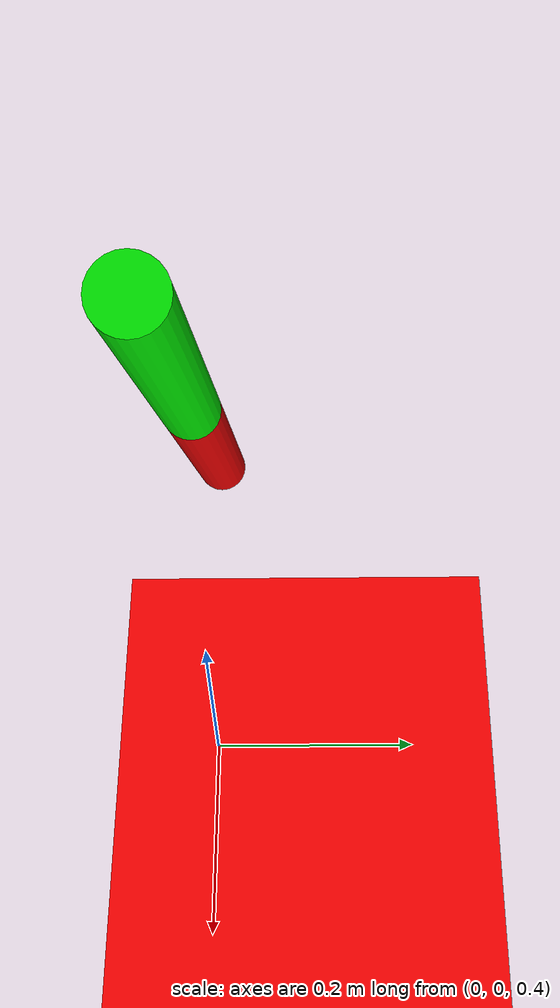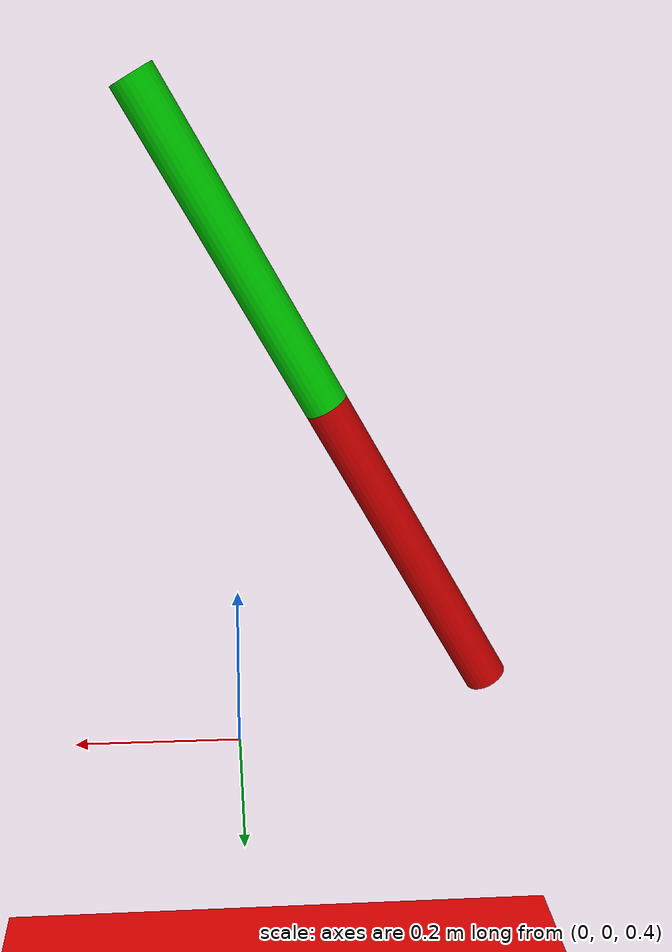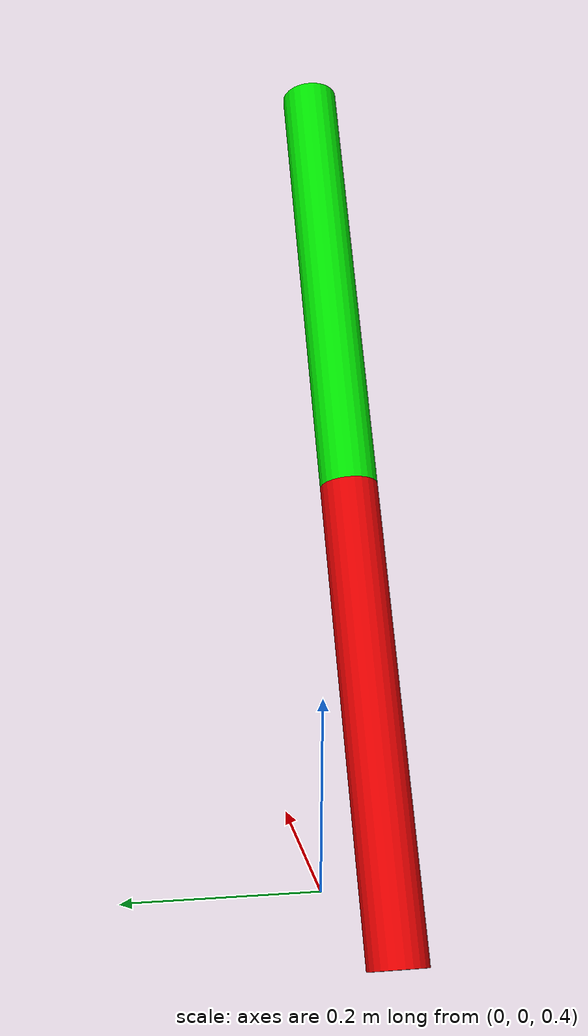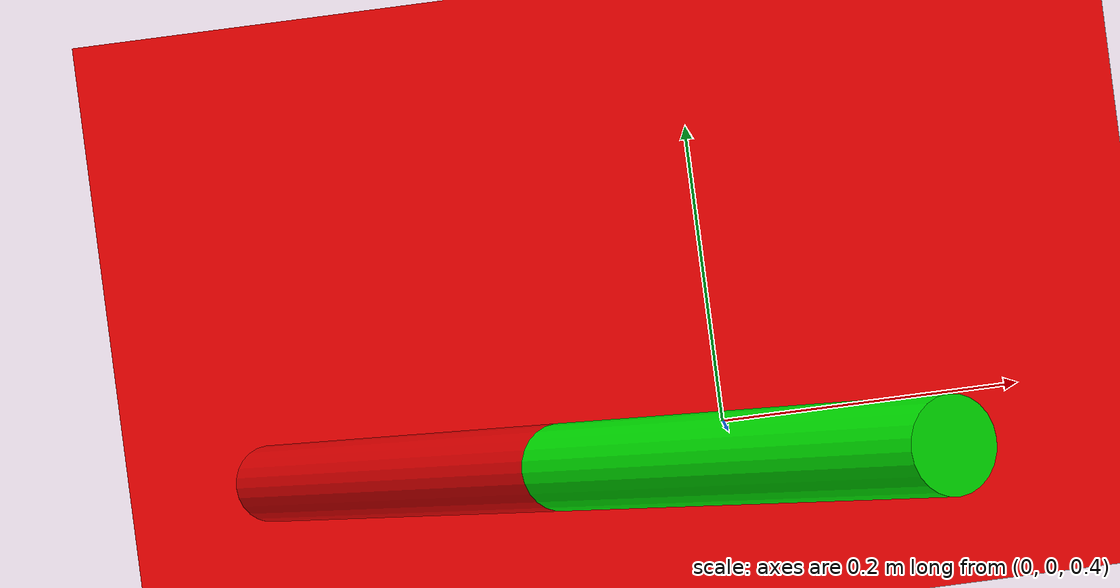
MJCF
<mujoco>
	<option gravity="0 0 -9.81" />
  <worldbody>
    <light diffuse=".5 .5 .5" pos="0 0 3" dir="0 0 -1"/>
    <geom type="plane" size="1 1 0.1" rgba=".9 0 0 1"/>
    <body pos="0 0 1" euler="0 30 0">
      <joint type="ball" pos="0 0 0.2"/>
      <geom type="cylinder" size="0.025 0.2" rgba="0 .9 0 1" mass="2"/>
			<body pos="0 0 -0.4" euler="0 0 0">
				<joint type="hinge" pos="0 0 0.2" axis="0 1 0"/>
				<geom type="cylinder" size="0.025 0.2" rgba="0.9 0 0 1" mass="2"/>
			</body>
    </body>
  </worldbody>
</mujoco>
